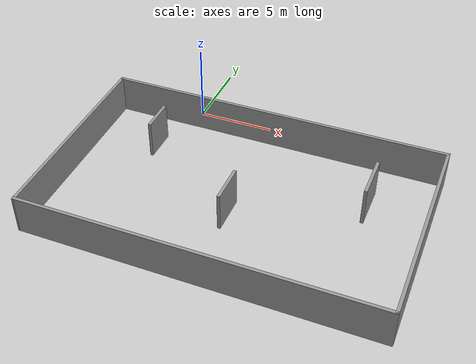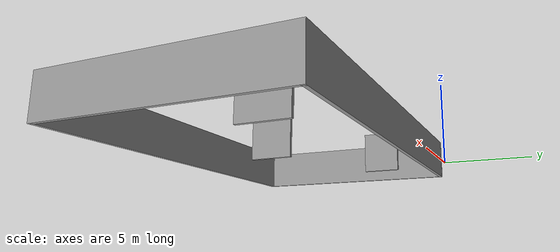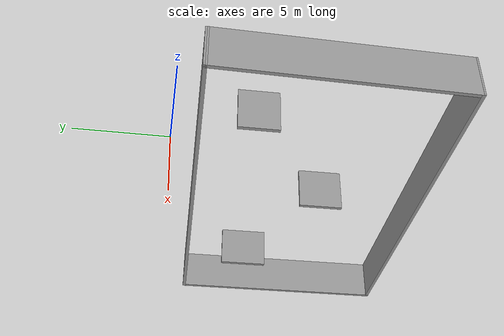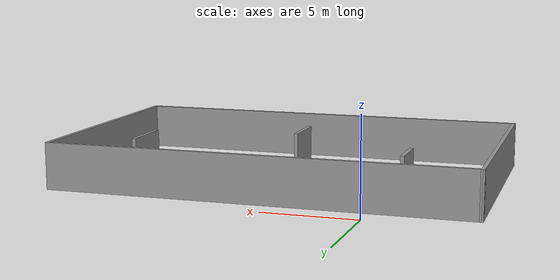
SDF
<?xml version='1.0'?>
<sdf version='1.4'>
  <model name='simple_wall'>
    <link name='Wall_0'>
      <collision name='Wall_0_Collision'>
        <geometry>
          <box>
            <size>22.7148 0.2 2.5</size>
          </box>
        </geometry>
        <pose>0 0 1.25 0 -0 0</pose>
      </collision>
      <visual name='Wall_0_Visual'>
        <pose>0 0 1.25 0 -0 0</pose>
        <geometry>
          <box>
            <size>22.7148 0.2 2.5</size>
          </box>
        </geometry>
        <material>
          <script>
            <uri>file://media/materials/scripts/gazebo.material</uri>
            <name>Gazebo/Grey</name>
          </script>
        </material>
      </visual>
      <velocity_decay>
        <linear>0</linear>
        <angular>0</angular>
      </velocity_decay>
      <pose>5.83738 -1.41 0 0 -0 0</pose>
    </link>
    <link name='Wall_1'>
      <collision name='Wall_1_Collision'>
        <geometry>
          <box>
            <size>13.5989 0.2 2.5</size>
          </box>
        </geometry>
        <pose>0 0 1.25 0 -0 0</pose>
      </collision>
      <visual name='Wall_1_Visual'>
        <pose>0 0 1.25 0 -0 0</pose>
        <geometry>
          <box>
            <size>13.5989 0.2 2.5</size>
          </box>
        </geometry>
        <material>
          <script>
            <uri>file://media/materials/scripts/gazebo.material</uri>
            <name>Gazebo/Grey</name>
          </script>
        </material>
      </visual>
      <velocity_decay>
        <linear>0</linear>
        <angular>0</angular>
      </velocity_decay>
      <pose>17.0948 -8.10947 0 0 0 -1.5708</pose>
    </link>
    <link name='Wall_2'>
      <collision name='Wall_2_Collision'>
        <geometry>
          <box>
            <size>22.4394 0.2 2.5</size>
          </box>
        </geometry>
        <pose>0 0 1.25 0 -0 0</pose>
      </collision>
      <visual name='Wall_2_Visual'>
        <pose>0 0 1.25 0 -0 0</pose>
        <geometry>
          <box>
            <size>22.4394 0.2 2.5</size>
          </box>
        </geometry>
        <material>
          <script>
            <uri>file://media/materials/scripts/gazebo.material</uri>
            <name>Gazebo/Grey</name>
          </script>
        </material>
      </visual>
      <velocity_decay>
        <linear>0</linear>
        <angular>0</angular>
      </velocity_decay>
      <pose>5.97507 -14.8089 0 0 -0 3.14159</pose>
    </link>
    <link name='Wall_3'>
      <collision name='Wall_3_Collision'>
        <geometry>
          <box>
            <size>13.6018 0.2 2.5</size>
          </box>
        </geometry>
        <pose>0 0 1.25 0 -0 0</pose>
      </collision>
      <visual name='Wall_3_Visual'>
        <pose>0 0 1.25 0 -0 0</pose>
        <geometry>
          <box>
            <size>13.6018 0.2 2.5</size>
          </box>
        </geometry>
        <material>
          <script>
            <uri>file://media/materials/scripts/gazebo.material</uri>
            <name>Gazebo/Grey</name>
          </script>
        </material>
      </visual>
      <velocity_decay>
        <linear>0</linear>
        <angular>0</angular>
      </velocity_decay>
      <pose>-5.28231 -8.10947 0 0 -0 1.59135</pose>
    </link>
    <link name='Wall_5'>
      <collision name='Wall_5_Collision'>
        <geometry>
          <box>
            <size>2.23042 0.2 2.5</size>
          </box>
        </geometry>
        <pose>0 0 1.25 0 -0 0</pose>
      </collision>
      <visual name='Wall_5_Visual'>
        <pose>0 0 1.25 0 -0 0</pose>
        <geometry>
          <box>
            <size>2.23042 0.2 2.5</size>
          </box>
        </geometry>
        <material>
          <script>
            <uri>file://media/materials/scripts/gazebo.material</uri>
            <name>Gazebo/Grey</name>
          </script>
        </material>
      </visual>
      <velocity_decay>
        <linear>0</linear>
        <angular>0</angular>
      </velocity_decay>
      <pose>-1.20683 -4.44149 0 0 0 -1.5708</pose>
    </link>
    <link name='Wall_7'>
      <collision name='Wall_7_Collision'>
        <geometry>
          <box>
            <size>2.53806 0.2 2.5</size>
          </box>
        </geometry>
        <pose>0 0 1.25 0 -0 0</pose>
      </collision>
      <visual name='Wall_7_Visual'>
        <pose>0 0 1.25 0 -0 0</pose>
        <geometry>
          <box>
            <size>2.53806 0.2 2.5</size>
          </box>
        </geometry>
        <material>
          <script>
            <uri>file://media/materials/scripts/gazebo.material</uri>
            <name>Gazebo/Grey</name>
          </script>
        </material>
      </visual>
      <velocity_decay>
        <linear>0</linear>
        <angular>0</angular>
      </velocity_decay>
      <pose>5.62276 -9.02532 0 0 0 -1.5708</pose>
    </link>
    <link name='Wall_9'>
      <collision name='Wall_9_Collision'>
        <geometry>
          <box>
            <size>2.90723 0.2 2.5</size>
          </box>
        </geometry>
        <pose>0 0 1.25 0 -0 0</pose>
      </collision>
      <visual name='Wall_9_Visual'>
        <pose>0 0 1.25 0 -0 0</pose>
        <geometry>
          <box>
            <size>2.90723 0.2 2.5</size>
          </box>
        </geometry>
        <material>
          <script>
            <uri>file://media/materials/scripts/gazebo.material</uri>
            <name>Gazebo/Grey</name>
          </script>
        </material>
      </visual>
      <velocity_decay>
        <linear>0</linear>
        <angular>0</angular>
      </velocity_decay>
      <pose>13.3137 -5.21059 0 0 0 -1.5708</pose>
    </link>
    <static>1</static>
  </model>
</sdf>
